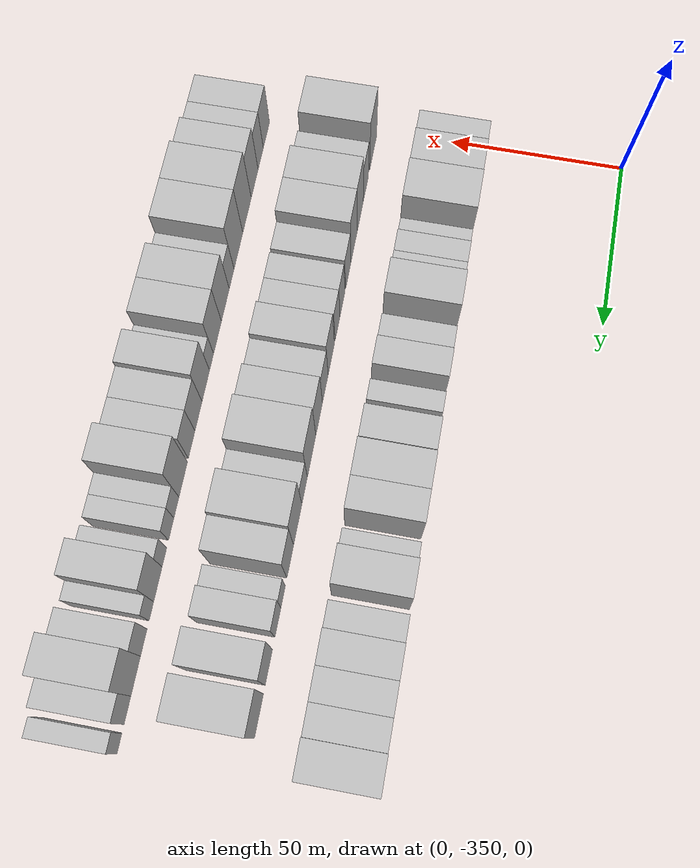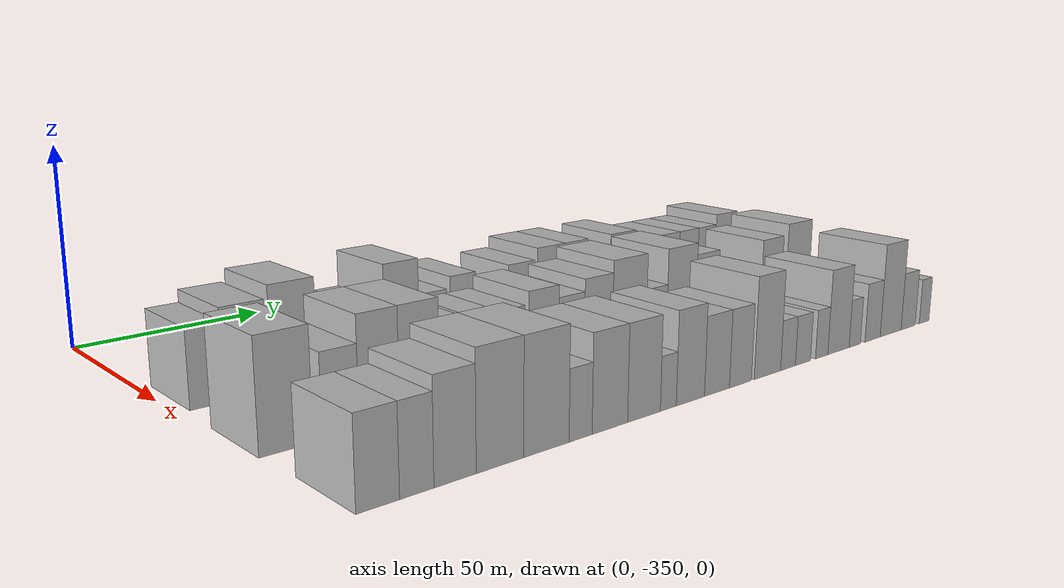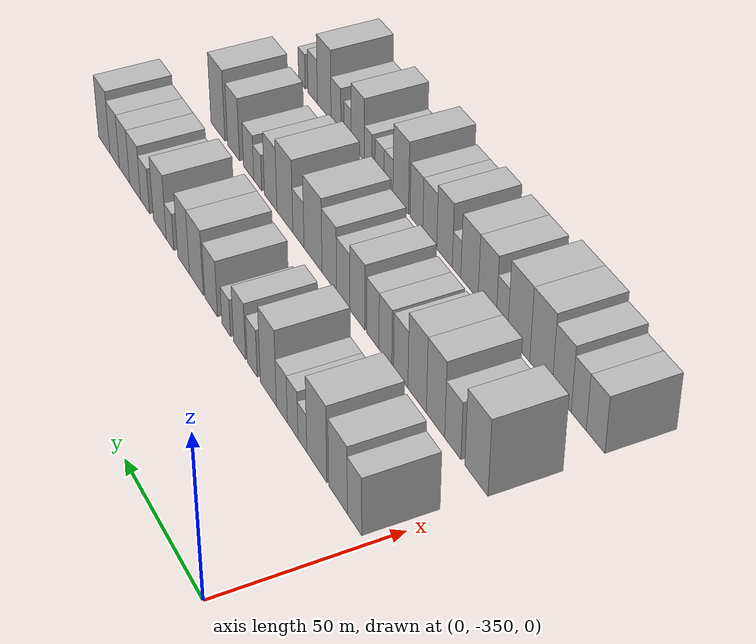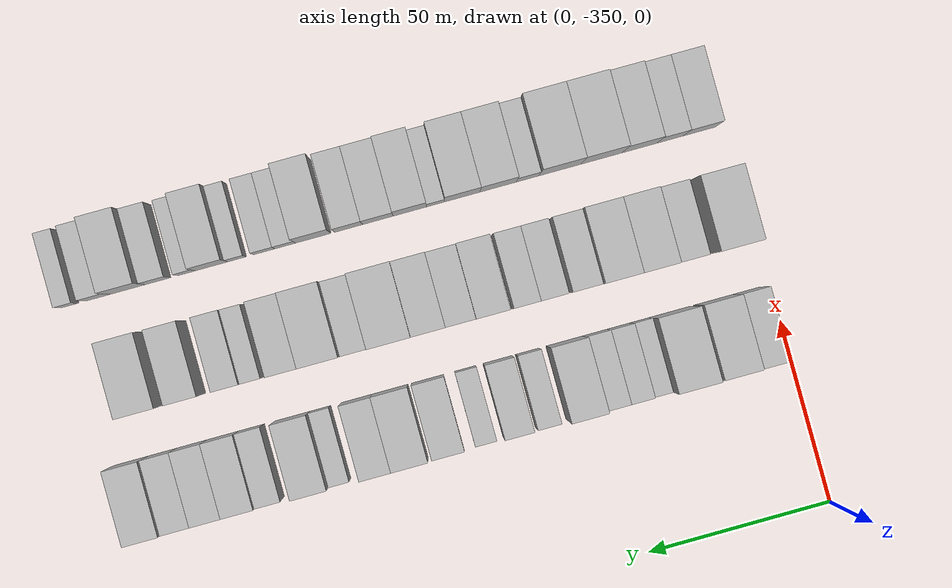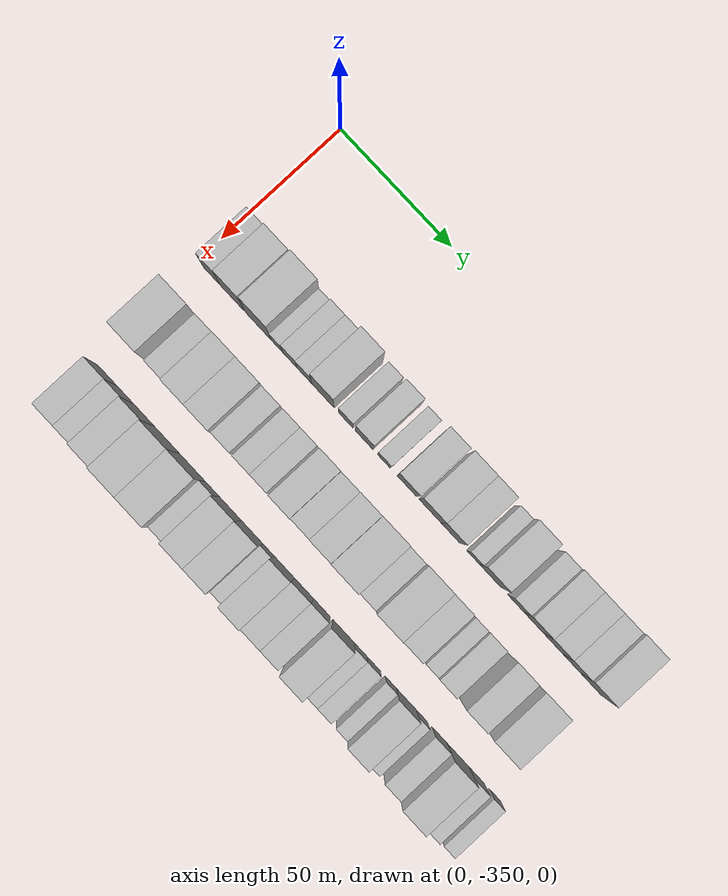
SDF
<sdf version="1.6">
 <world name="default">
  <model name="building_1">
   <static>1</static>
   <pose>50.0000 -343.1323 0 0.000000 0.000000 0.000000</pose>
   <link name="link">
    <pose>0 0 9.00 0 0 0</pose>
    <collision name="collision"><geometry><box><size>20.0000 7.7355 18.0000</size></box></geometry></collision>
    <visual name="visual">
     <cast_shadows>0</cast_shadows>
     <geometry><box><size>20.0000 7.7355 18.0000</size></box></geometry>
     <material>
      <script>
       <uri>model://HANNAS_wall/materials/scripts</uri>
       <uri>model://HANNAS_wall/materials/textures</uri>
       <name>vrc/HANNAS_wall</name>
      </script>
     </material>
    </visual>
   </link>
  </model>
  <model name="building_2">
   <static>1</static>
   <pose>50.0000 -334.0682 0 0.000000 0.000000 0.000000</pose>
   <link name="link">
    <pose>0 0 10.50 0 0 0</pose>
    <collision name="collision"><geometry><box><size>20.0000 10.3926 21.0000</size></box></geometry></collision>
    <visual name="visual">
     <cast_shadows>0</cast_shadows>
     <geometry><box><size>20.0000 10.3926 21.0000</size></box></geometry>
     <material>
      <script>
       <uri>model://HANNAS_wall/materials/scripts</uri>
       <uri>model://HANNAS_wall/materials/textures</uri>
       <name>vrc/HANNAS_wall</name>
      </script>
     </material>
    </visual>
   </link>
  </model>
  <model name="building_3">
   <static>1</static>
   <pose>50.0000 -322.1165 0 0.000000 0.000000 0.000000</pose>
   <link name="link">
    <pose>0 0 12.00 0 0 0</pose>
    <collision name="collision"><geometry><box><size>20.0000 11.5109 24.0000</size></box></geometry></collision>
    <visual name="visual">
     <cast_shadows>0</cast_shadows>
     <geometry><box><size>20.0000 11.5109 24.0000</size></box></geometry>
     <material>
      <script>
       <uri>model://HANNAS_wall/materials/scripts</uri>
       <uri>model://HANNAS_wall/materials/textures</uri>
       <name>vrc/HANNAS_wall</name>
      </script>
     </material>
    </visual>
   </link>
  </model>
  <model name="building_4">
   <static>1</static>
   <pose>50.0000 -313.7867 0 0.000000 0.000000 0.000000</pose>
   <link name="link">
    <pose>0 0 6.00 0 0 0</pose>
    <collision name="collision"><geometry><box><size>20.0000 5.1487 12.0000</size></box></geometry></collision>
    <visual name="visual">
     <cast_shadows>0</cast_shadows>
     <geometry><box><size>20.0000 5.1487 12.0000</size></box></geometry>
     <material>
      <script>
       <uri>model://HANNAS_wall/materials/scripts</uri>
       <uri>model://HANNAS_wall/materials/textures</uri>
       <name>vrc/HANNAS_wall</name>
      </script>
     </material>
    </visual>
   </link>
  </model>
  <model name="building_5">
   <static>1</static>
   <pose>50.0000 -308.0372 0 0.000000 0.000000 0.000000</pose>
   <link name="link">
    <pose>0 0 7.50 0 0 0</pose>
    <collision name="collision"><geometry><box><size>20.0000 6.3502 15.0000</size></box></geometry></collision>
    <visual name="visual">
     <cast_shadows>0</cast_shadows>
     <geometry><box><size>20.0000 6.3502 15.0000</size></box></geometry>
     <material>
      <script>
       <uri>model://HANNAS_wall/materials/scripts</uri>
       <uri>model://HANNAS_wall/materials/textures</uri>
       <name>vrc/HANNAS_wall</name>
      </script>
     </material>
    </visual>
   </link>
  </model>
  <model name="building_6">
   <static>1</static>
   <pose>50.0000 -301.5189 0 0.000000 0.000000 0.000000</pose>
   <link name="link">
    <pose>0 0 7.50 0 0 0</pose>
    <collision name="collision"><geometry><box><size>20.0000 6.6865 15.0000</size></box></geometry></collision>
    <visual name="visual">
     <cast_shadows>0</cast_shadows>
     <geometry><box><size>20.0000 6.6865 15.0000</size></box></geometry>
     <material>
      <script>
       <uri>model://HANNAS_wall/materials/scripts</uri>
       <uri>model://HANNAS_wall/materials/textures</uri>
       <name>vrc/HANNAS_wall</name>
      </script>
     </material>
    </visual>
   </link>
  </model>
  <model name="building_7">
   <static>1</static>
   <pose>50.0000 -293.2003 0 0.000000 0.000000 0.000000</pose>
   <link name="link">
    <pose>0 0 12.00 0 0 0</pose>
    <collision name="collision"><geometry><box><size>20.0000 9.9508 24.0000</size></box></geometry></collision>
    <visual name="visual">
     <cast_shadows>0</cast_shadows>
     <geometry><box><size>20.0000 9.9508 24.0000</size></box></geometry>
     <material>
      <script>
       <uri>model://HANNAS_wall/materials/scripts</uri>
       <uri>model://HANNAS_wall/materials/textures</uri>
       <name>vrc/HANNAS_wall</name>
      </script>
     </material>
    </visual>
   </link>
  </model>
  <model name="building_8">
   <static>1</static>
   <pose>50.0000 -283.0246 0 0.000000 0.000000 0.000000</pose>
   <link name="link">
    <pose>0 0 7.50 0 0 0</pose>
    <collision name="collision"><geometry><box><size>20.0000 6.4006 15.0000</size></box></geometry></collision>
    <visual name="visual">
     <cast_shadows>0</cast_shadows>
     <geometry><box><size>20.0000 6.4006 15.0000</size></box></geometry>
     <material>
      <script>
       <uri>model://HANNAS_wall/materials/scripts</uri>
       <uri>model://HANNAS_wall/materials/textures</uri>
       <name>vrc/HANNAS_wall</name>
      </script>
     </material>
    </visual>
   </link>
  </model>
  <model name="building_9">
   <static>1</static>
   <pose>50.0000 -274.8611 0 0.000000 0.000000 0.000000</pose>
   <link name="link">
    <pose>0 0 9.00 0 0 0</pose>
    <collision name="collision"><geometry><box><size>20.0000 7.9264 18.0000</size></box></geometry></collision>
    <visual name="visual">
     <cast_shadows>0</cast_shadows>
     <geometry><box><size>20.0000 7.9264 18.0000</size></box></geometry>
     <material>
      <script>
       <uri>model://HANNAS_wall/materials/scripts</uri>
       <uri>model://HANNAS_wall/materials/textures</uri>
       <name>vrc/HANNAS_wall</name>
      </script>
     </material>
    </visual>
   </link>
  </model>
  <model name="building_10">
   <static>1</static>
   <pose>50.0000 -266.0002 0 0.000000 0.000000 0.000000</pose>
   <link name="link">
    <pose>0 0 6.00 0 0 0</pose>
    <collision name="collision"><geometry><box><size>20.0000 5.7954 12.0000</size></box></geometry></collision>
    <visual name="visual">
     <cast_shadows>0</cast_shadows>
     <geometry><box><size>20.0000 5.7954 12.0000</size></box></geometry>
     <material>
      <script>
       <uri>model://HANNAS_wall/materials/scripts</uri>
       <uri>model://HANNAS_wall/materials/textures</uri>
       <name>vrc/HANNAS_wall</name>
      </script>
     </material>
    </visual>
   </link>
  </model>
  <model name="building_11">
   <static>1</static>
   <pose>50.0000 -255.7289 0 0.000000 0.000000 0.000000</pose>
   <link name="link">
    <pose>0 0 9.00 0 0 0</pose>
    <collision name="collision"><geometry><box><size>20.0000 8.7473 18.0000</size></box></geometry></collision>
    <visual name="visual">
     <cast_shadows>0</cast_shadows>
     <geometry><box><size>20.0000 8.7473 18.0000</size></box></geometry>
     <material>
      <script>
       <uri>model://HANNAS_wall/materials/scripts</uri>
       <uri>model://HANNAS_wall/materials/textures</uri>
       <name>vrc/HANNAS_wall</name>
      </script>
     </material>
    </visual>
   </link>
  </model>
  <model name="building_12">
   <static>1</static>
   <pose>50.0000 -245.4436 0 0.000000 0.000000 0.000000</pose>
   <link name="link">
    <pose>0 0 10.50 0 0 0</pose>
    <collision name="collision"><geometry><box><size>20.0000 9.8232 21.0000</size></box></geometry></collision>
    <visual name="visual">
     <cast_shadows>0</cast_shadows>
     <geometry><box><size>20.0000 9.8232 21.0000</size></box></geometry>
     <material>
      <script>
       <uri>model://HANNAS_wall/materials/scripts</uri>
       <uri>model://HANNAS_wall/materials/textures</uri>
       <name>vrc/HANNAS_wall</name>
      </script>
     </material>
    </visual>
   </link>
  </model>
  <model name="building_13">
   <static>1</static>
   <pose>50.0000 -236.3201 0 0.000000 0.000000 0.000000</pose>
   <link name="link">
    <pose>0 0 10.50 0 0 0</pose>
    <collision name="collision"><geometry><box><size>20.0000 8.4239 21.0000</size></box></geometry></collision>
    <visual name="visual">
     <cast_shadows>0</cast_shadows>
     <geometry><box><size>20.0000 8.4239 21.0000</size></box></geometry>
     <material>
      <script>
       <uri>model://HANNAS_wall/materials/scripts</uri>
       <uri>model://HANNAS_wall/materials/textures</uri>
       <name>vrc/HANNAS_wall</name>
      </script>
     </material>
    </visual>
   </link>
  </model>
  <model name="building_14">
   <static>1</static>
   <pose>50.0000 -226.3254 0 0.000000 0.000000 0.000000</pose>
   <link name="link">
    <pose>0 0 6.00 0 0 0</pose>
    <collision name="collision"><geometry><box><size>20.0000 5.5656 12.0000</size></box></geometry></collision>
    <visual name="visual">
     <cast_shadows>0</cast_shadows>
     <geometry><box><size>20.0000 5.5656 12.0000</size></box></geometry>
     <material>
      <script>
       <uri>model://HANNAS_wall/materials/scripts</uri>
       <uri>model://HANNAS_wall/materials/textures</uri>
       <name>vrc/HANNAS_wall</name>
      </script>
     </material>
    </visual>
   </link>
  </model>
  <model name="building_15">
   <static>1</static>
   <pose>50.0000 -218.6928 0 0.000000 0.000000 0.000000</pose>
   <link name="link">
    <pose>0 0 10.50 0 0 0</pose>
    <collision name="collision"><geometry><box><size>20.0000 9.6996 21.0000</size></box></geometry></collision>
    <visual name="visual">
     <cast_shadows>0</cast_shadows>
     <geometry><box><size>20.0000 9.6996 21.0000</size></box></geometry>
     <material>
      <script>
       <uri>model://HANNAS_wall/materials/scripts</uri>
       <uri>model://HANNAS_wall/materials/textures</uri>
       <name>vrc/HANNAS_wall</name>
      </script>
     </material>
    </visual>
   </link>
  </model>
  <model name="building_16">
   <static>1</static>
   <pose>50.0000 -207.3635 0 0.000000 0.000000 0.000000</pose>
   <link name="link">
    <pose>0 0 7.50 0 0 0</pose>
    <collision name="collision"><geometry><box><size>20.0000 6.9588 15.0000</size></box></geometry></collision>
    <visual name="visual">
     <cast_shadows>0</cast_shadows>
     <geometry><box><size>20.0000 6.9588 15.0000</size></box></geometry>
     <material>
      <script>
       <uri>model://HANNAS_wall/materials/scripts</uri>
       <uri>model://HANNAS_wall/materials/textures</uri>
       <name>vrc/HANNAS_wall</name>
      </script>
     </material>
    </visual>
   </link>
  </model>
  <model name="building_17">
   <static>1</static>
   <pose>50.0000 -199.5270 0 0.000000 0.000000 0.000000</pose>
   <link name="link">
    <pose>0 0 9.00 0 0 0</pose>
    <collision name="collision"><geometry><box><size>20.0000 8.7142 18.0000</size></box></geometry></collision>
    <visual name="visual">
     <cast_shadows>0</cast_shadows>
     <geometry><box><size>20.0000 8.7142 18.0000</size></box></geometry>
     <material>
      <script>
       <uri>model://HANNAS_wall/materials/scripts</uri>
       <uri>model://HANNAS_wall/materials/textures</uri>
       <name>vrc/HANNAS_wall</name>
      </script>
     </material>
    </visual>
   </link>
  </model>
  <model name="building_18">
   <static>1</static>
   <pose>50.0000 -191.0244 0 0.000000 0.000000 0.000000</pose>
   <link name="link">
    <pose>0 0 9.00 0 0 0</pose>
    <collision name="collision"><geometry><box><size>20.0000 8.2911 18.0000</size></box></geometry></collision>
    <visual name="visual">
     <cast_shadows>0</cast_shadows>
     <geometry><box><size>20.0000 8.2911 18.0000</size></box></geometry>
     <material>
      <script>
       <uri>model://HANNAS_wall/materials/scripts</uri>
       <uri>model://HANNAS_wall/materials/textures</uri>
       <name>vrc/HANNAS_wall</name>
      </script>
     </material>
    </visual>
   </link>
  </model>
  <model name="building_19">
   <static>1</static>
   <pose>50.0000 -182.9614 0 0.000000 0.000000 0.000000</pose>
   <link name="link">
    <pose>0 0 9.00 0 0 0</pose>
    <collision name="collision"><geometry><box><size>20.0000 7.8348 18.0000</size></box></geometry></collision>
    <visual name="visual">
     <cast_shadows>0</cast_shadows>
     <geometry><box><size>20.0000 7.8348 18.0000</size></box></geometry>
     <material>
      <script>
       <uri>model://HANNAS_wall/materials/scripts</uri>
       <uri>model://HANNAS_wall/materials/textures</uri>
       <name>vrc/HANNAS_wall</name>
      </script>
     </material>
    </visual>
   </link>
  </model>
  <model name="building_20">
   <static>1</static>
   <pose>50.0000 -174.2589 0 0.000000 0.000000 0.000000</pose>
   <link name="link">
    <pose>0 0 10.50 0 0 0</pose>
    <collision name="collision"><geometry><box><size>20.0000 9.5702 21.0000</size></box></geometry></collision>
    <visual name="visual">
     <cast_shadows>0</cast_shadows>
     <geometry><box><size>20.0000 9.5702 21.0000</size></box></geometry>
     <material>
      <script>
       <uri>model://HANNAS_wall/materials/scripts</uri>
       <uri>model://HANNAS_wall/materials/textures</uri>
       <name>vrc/HANNAS_wall</name>
      </script>
     </material>
    </visual>
   </link>
  </model>
  <model name="building_82">
   <static>1</static>
   <pose>82.0000 -342.1577 0 0.000000 0.000000 0.000000</pose>
   <link name="link">
    <pose>0 0 12.00 0 0 0</pose>
    <collision name="collision"><geometry><box><size>20.0000 11.6846 24.0000</size></box></geometry></collision>
    <visual name="visual">
     <cast_shadows>0</cast_shadows>
     <geometry><box><size>20.0000 11.6846 24.0000</size></box></geometry>
     <material>
      <script>
       <uri>model://HANNAS_wall/materials/scripts</uri>
       <uri>model://HANNAS_wall/materials/textures</uri>
       <name>vrc/HANNAS_wall</name>
      </script>
     </material>
    </visual>
   </link>
  </model>
  <model name="building_83">
   <static>1</static>
   <pose>82.0000 -330.0764 0 0.000000 0.000000 0.000000</pose>
   <link name="link">
    <pose>0 0 9.00 0 0 0</pose>
    <collision name="collision"><geometry><box><size>20.0000 8.4780 18.0000</size></box></geometry></collision>
    <visual name="visual">
     <cast_shadows>0</cast_shadows>
     <geometry><box><size>20.0000 8.4780 18.0000</size></box></geometry>
     <material>
      <script>
       <uri>model://HANNAS_wall/materials/scripts</uri>
       <uri>model://HANNAS_wall/materials/textures</uri>
       <name>vrc/HANNAS_wall</name>
      </script>
     </material>
    </visual>
   </link>
  </model>
  <model name="building_84">
   <static>1</static>
   <pose>82.0000 -320.9536 0 0.000000 0.000000 0.000000</pose>
   <link name="link">
    <pose>0 0 12.00 0 0 0</pose>
    <collision name="collision"><geometry><box><size>20.0000 9.7677 24.0000</size></box></geometry></collision>
    <visual name="visual">
     <cast_shadows>0</cast_shadows>
     <geometry><box><size>20.0000 9.7677 24.0000</size></box></geometry>
     <material>
      <script>
       <uri>model://HANNAS_wall/materials/scripts</uri>
       <uri>model://HANNAS_wall/materials/textures</uri>
       <name>vrc/HANNAS_wall</name>
      </script>
     </material>
    </visual>
   </link>
  </model>
  <model name="building_85">
   <static>1</static>
   <pose>82.0000 -310.9833 0 0.000000 0.000000 0.000000</pose>
   <link name="link">
    <pose>0 0 12.00 0 0 0</pose>
    <collision name="collision"><geometry><box><size>20.0000 10.1730 24.0000</size></box></geometry></collision>
    <visual name="visual">
     <cast_shadows>0</cast_shadows>
     <geometry><box><size>20.0000 10.1730 24.0000</size></box></geometry>
     <material>
      <script>
       <uri>model://HANNAS_wall/materials/scripts</uri>
       <uri>model://HANNAS_wall/materials/textures</uri>
       <name>vrc/HANNAS_wall</name>
      </script>
     </material>
    </visual>
   </link>
  </model>
  <model name="building_86">
   <static>1</static>
   <pose>82.0000 -301.8512 0 0.000000 0.000000 0.000000</pose>
   <link name="link">
    <pose>0 0 9.00 0 0 0</pose>
    <collision name="collision"><geometry><box><size>20.0000 8.0912 18.0000</size></box></geometry></collision>
    <visual name="visual">
     <cast_shadows>0</cast_shadows>
     <geometry><box><size>20.0000 8.0912 18.0000</size></box></geometry>
     <material>
      <script>
       <uri>model://HANNAS_wall/materials/scripts</uri>
       <uri>model://HANNAS_wall/materials/textures</uri>
       <name>vrc/HANNAS_wall</name>
      </script>
     </material>
    </visual>
   </link>
  </model>
  <model name="building_87">
   <static>1</static>
   <pose>82.0000 -293.0760 0 0.000000 0.000000 0.000000</pose>
   <link name="link">
    <pose>0 0 9.00 0 0 0</pose>
    <collision name="collision"><geometry><box><size>20.0000 7.4592 18.0000</size></box></geometry></collision>
    <visual name="visual">
     <cast_shadows>0</cast_shadows>
     <geometry><box><size>20.0000 7.4592 18.0000</size></box></geometry>
     <material>
      <script>
       <uri>model://HANNAS_wall/materials/scripts</uri>
       <uri>model://HANNAS_wall/materials/textures</uri>
       <name>vrc/HANNAS_wall</name>
      </script>
     </material>
    </visual>
   </link>
  </model>
  <model name="building_88">
   <static>1</static>
   <pose>82.0000 -285.7234 0 0.000000 0.000000 0.000000</pose>
   <link name="link">
    <pose>0 0 9.00 0 0 0</pose>
    <collision name="collision"><geometry><box><size>20.0000 7.2460 18.0000</size></box></geometry></collision>
    <visual name="visual">
     <cast_shadows>0</cast_shadows>
     <geometry><box><size>20.0000 7.2460 18.0000</size></box></geometry>
     <material>
      <script>
       <uri>model://HANNAS_wall/materials/scripts</uri>
       <uri>model://HANNAS_wall/materials/textures</uri>
       <name>vrc/HANNAS_wall</name>
      </script>
     </material>
    </visual>
   </link>
  </model>
  <model name="building_89">
   <static>1</static>
   <pose>82.0000 -276.5617 0 0.000000 0.000000 0.000000</pose>
   <link name="link">
    <pose>0 0 10.50 0 0 0</pose>
    <collision name="collision"><geometry><box><size>20.0000 9.0774 21.0000</size></box></geometry></collision>
    <visual name="visual">
     <cast_shadows>0</cast_shadows>
     <geometry><box><size>20.0000 9.0774 21.0000</size></box></geometry>
     <material>
      <script>
       <uri>model://HANNAS_wall/materials/scripts</uri>
       <uri>model://HANNAS_wall/materials/textures</uri>
       <name>vrc/HANNAS_wall</name>
      </script>
     </material>
    </visual>
   </link>
  </model>
  <model name="building_90">
   <static>1</static>
   <pose>82.0000 -267.9298 0 0.000000 0.000000 0.000000</pose>
   <link name="link">
    <pose>0 0 9.00 0 0 0</pose>
    <collision name="collision"><geometry><box><size>20.0000 8.1864 18.0000</size></box></geometry></collision>
    <visual name="visual">
     <cast_shadows>0</cast_shadows>
     <geometry><box><size>20.0000 8.1864 18.0000</size></box></geometry>
     <material>
      <script>
       <uri>model://HANNAS_wall/materials/scripts</uri>
       <uri>model://HANNAS_wall/materials/textures</uri>
       <name>vrc/HANNAS_wall</name>
      </script>
     </material>
    </visual>
   </link>
  </model>
  <model name="building_91">
   <static>1</static>
   <pose>82.0000 -259.2236 0 0.000000 0.000000 0.000000</pose>
   <link name="link">
    <pose>0 0 10.50 0 0 0</pose>
    <collision name="collision"><geometry><box><size>20.0000 9.2261 21.0000</size></box></geometry></collision>
    <visual name="visual">
     <cast_shadows>0</cast_shadows>
     <geometry><box><size>20.0000 9.2261 21.0000</size></box></geometry>
     <material>
      <script>
       <uri>model://HANNAS_wall/materials/scripts</uri>
       <uri>model://HANNAS_wall/materials/textures</uri>
       <name>vrc/HANNAS_wall</name>
      </script>
     </material>
    </visual>
   </link>
  </model>
  <model name="building_92">
   <static>1</static>
   <pose>82.0000 -248.7819 0 0.000000 0.000000 0.000000</pose>
   <link name="link">
    <pose>0 0 12.00 0 0 0</pose>
    <collision name="collision"><geometry><box><size>20.0000 11.6572 24.0000</size></box></geometry></collision>
    <visual name="visual">
     <cast_shadows>0</cast_shadows>
     <geometry><box><size>20.0000 11.6572 24.0000</size></box></geometry>
     <material>
      <script>
       <uri>model://HANNAS_wall/materials/scripts</uri>
       <uri>model://HANNAS_wall/materials/textures</uri>
       <name>vrc/HANNAS_wall</name>
      </script>
     </material>
    </visual>
   </link>
  </model>
  <model name="building_93">
   <static>1</static>
   <pose>82.0000 -239.2567 0 0.000000 0.000000 0.000000</pose>
   <link name="link">
    <pose>0 0 7.50 0 0 0</pose>
    <collision name="collision"><geometry><box><size>20.0000 7.3933 15.0000</size></box></geometry></collision>
    <visual name="visual">
     <cast_shadows>0</cast_shadows>
     <geometry><box><size>20.0000 7.3933 15.0000</size></box></geometry>
     <material>
      <script>
       <uri>model://HANNAS_wall/materials/scripts</uri>
       <uri>model://HANNAS_wall/materials/textures</uri>
       <name>vrc/HANNAS_wall</name>
      </script>
     </material>
    </visual>
   </link>
  </model>
  <model name="building_94">
   <static>1</static>
   <pose>82.0000 -230.1177 0 0.000000 0.000000 0.000000</pose>
   <link name="link">
    <pose>0 0 12.00 0 0 0</pose>
    <collision name="collision"><geometry><box><size>20.0000 10.8847 24.0000</size></box></geometry></collision>
    <visual name="visual">
     <cast_shadows>0</cast_shadows>
     <geometry><box><size>20.0000 10.8847 24.0000</size></box></geometry>
     <material>
      <script>
       <uri>model://HANNAS_wall/materials/scripts</uri>
       <uri>model://HANNAS_wall/materials/textures</uri>
       <name>vrc/HANNAS_wall</name>
      </script>
     </material>
    </visual>
   </link>
  </model>
  <model name="building_95">
   <static>1</static>
   <pose>82.0000 -220.3671 0 0.000000 0.000000 0.000000</pose>
   <link name="link">
    <pose>0 0 10.50 0 0 0</pose>
    <collision name="collision"><geometry><box><size>20.0000 8.6164 21.0000</size></box></geometry></collision>
    <visual name="visual">
     <cast_shadows>0</cast_shadows>
     <geometry><box><size>20.0000 8.6164 21.0000</size></box></geometry>
     <material>
      <script>
       <uri>model://HANNAS_wall/materials/scripts</uri>
       <uri>model://HANNAS_wall/materials/textures</uri>
       <name>vrc/HANNAS_wall</name>
      </script>
     </material>
    </visual>
   </link>
  </model>
  <model name="building_96">
   <static>1</static>
   <pose>82.0000 -211.2532 0 0.000000 0.000000 0.000000</pose>
   <link name="link">
    <pose>0 0 6.00 0 0 0</pose>
    <collision name="collision"><geometry><box><size>20.0000 5.6115 12.0000</size></box></geometry></collision>
    <visual name="visual">
     <cast_shadows>0</cast_shadows>
     <geometry><box><size>20.0000 5.6115 12.0000</size></box></geometry>
     <material>
      <script>
       <uri>model://HANNAS_wall/materials/scripts</uri>
       <uri>model://HANNAS_wall/materials/textures</uri>
       <name>vrc/HANNAS_wall</name>
      </script>
     </material>
    </visual>
   </link>
  </model>
  <model name="building_97">
   <static>1</static>
   <pose>82.0000 -204.7454 0 0.000000 0.000000 0.000000</pose>
   <link name="link">
    <pose>0 0 7.50 0 0 0</pose>
    <collision name="collision"><geometry><box><size>20.0000 7.4041 15.0000</size></box></geometry></collision>
    <visual name="visual">
     <cast_shadows>0</cast_shadows>
     <geometry><box><size>20.0000 7.4041 15.0000</size></box></geometry>
     <material>
      <script>
       <uri>model://HANNAS_wall/materials/scripts</uri>
       <uri>model://HANNAS_wall/materials/textures</uri>
       <name>vrc/HANNAS_wall</name>
      </script>
     </material>
    </visual>
   </link>
  </model>
  <model name="building_98">
   <static>1</static>
   <pose>82.0000 -193.6191 0 0.000000 0.000000 0.000000</pose>
   <link name="link">
    <pose>0 0 10.50 0 0 0</pose>
    <collision name="collision"><geometry><box><size>20.0000 8.8485 21.0000</size></box></geometry></collision>
    <visual name="visual">
     <cast_shadows>0</cast_shadows>
     <geometry><box><size>20.0000 8.8485 21.0000</size></box></geometry>
     <material>
      <script>
       <uri>model://HANNAS_wall/materials/scripts</uri>
       <uri>model://HANNAS_wall/materials/textures</uri>
       <name>vrc/HANNAS_wall</name>
      </script>
     </material>
    </visual>
   </link>
  </model>
  <model name="building_99">
   <static>1</static>
   <pose>82.0000 -181.8639 0 0.000000 0.000000 0.000000</pose>
   <link name="link">
    <pose>0 0 12.00 0 0 0</pose>
    <collision name="collision"><geometry><box><size>20.0000 10.6620 24.0000</size></box></geometry></collision>
    <visual name="visual">
     <cast_shadows>0</cast_shadows>
     <geometry><box><size>20.0000 10.6620 24.0000</size></box></geometry>
     <material>
      <script>
       <uri>model://HANNAS_wall/materials/scripts</uri>
       <uri>model://HANNAS_wall/materials/textures</uri>
       <name>vrc/HANNAS_wall</name>
      </script>
     </material>
    </visual>
   </link>
  </model>
  <model name="building_160">
   <static>1</static>
   <pose>114.0000 -342.5778 0 0.000000 0.000000 0.000000</pose>
   <link name="link">
    <pose>0 0 9.00 0 0 0</pose>
    <collision name="collision"><geometry><box><size>20.0000 8.8443 18.0000</size></box></geometry></collision>
    <visual name="visual">
     <cast_shadows>0</cast_shadows>
     <geometry><box><size>20.0000 8.8443 18.0000</size></box></geometry>
     <material>
      <script>
       <uri>model://HANNAS_wall/materials/scripts</uri>
       <uri>model://HANNAS_wall/materials/textures</uri>
       <name>vrc/HANNAS_wall</name>
      </script>
     </material>
    </visual>
   </link>
  </model>
  <model name="building_161">
   <static>1</static>
   <pose>114.0000 -334.4959 0 0.000000 0.000000 0.000000</pose>
   <link name="link">
    <pose>0 0 9.00 0 0 0</pose>
    <collision name="collision"><geometry><box><size>20.0000 7.3195 18.0000</size></box></geometry></collision>
    <visual name="visual">
     <cast_shadows>0</cast_shadows>
     <geometry><box><size>20.0000 7.3195 18.0000</size></box></geometry>
     <material>
      <script>
       <uri>model://HANNAS_wall/materials/scripts</uri>
       <uri>model://HANNAS_wall/materials/textures</uri>
       <name>vrc/HANNAS_wall</name>
      </script>
     </material>
    </visual>
   </link>
  </model>
  <model name="building_162">
   <static>1</static>
   <pose>114.0000 -326.1073 0 0.000000 0.000000 0.000000</pose>
   <link name="link">
    <pose>0 0 10.50 0 0 0</pose>
    <collision name="collision"><geometry><box><size>20.0000 9.4577 21.0000</size></box></geometry></collision>
    <visual name="visual">
     <cast_shadows>0</cast_shadows>
     <geometry><box><size>20.0000 9.4577 21.0000</size></box></geometry>
     <material>
      <script>
       <uri>model://HANNAS_wall/materials/scripts</uri>
       <uri>model://HANNAS_wall/materials/textures</uri>
       <name>vrc/HANNAS_wall</name>
      </script>
     </material>
    </visual>
   </link>
  </model>
  <model name="building_163">
   <static>1</static>
   <pose>114.0000 -315.6793 0 0.000000 0.000000 0.000000</pose>
   <link name="link">
    <pose>0 0 12.00 0 0 0</pose>
    <collision name="collision"><geometry><box><size>20.0000 11.3982 24.0000</size></box></geometry></collision>
    <visual name="visual">
     <cast_shadows>0</cast_shadows>
     <geometry><box><size>20.0000 11.3982 24.0000</size></box></geometry>
     <material>
      <script>
       <uri>model://HANNAS_wall/materials/scripts</uri>
       <uri>model://HANNAS_wall/materials/textures</uri>
       <name>vrc/HANNAS_wall</name>
      </script>
     </material>
    </visual>
   </link>
  </model>
  <model name="building_164">
   <static>1</static>
   <pose>114.0000 -304.1939 0 0.000000 0.000000 0.000000</pose>
   <link name="link">
    <pose>0 0 12.00 0 0 0</pose>
    <collision name="collision"><geometry><box><size>20.0000 11.5726 24.0000</size></box></geometry></collision>
    <visual name="visual">
     <cast_shadows>0</cast_shadows>
     <geometry><box><size>20.0000 11.5726 24.0000</size></box></geometry>
     <material>
      <script>
       <uri>model://HANNAS_wall/materials/scripts</uri>
       <uri>model://HANNAS_wall/materials/textures</uri>
       <name>vrc/HANNAS_wall</name>
      </script>
     </material>
    </visual>
   </link>
  </model>
  <model name="building_165">
   <static>1</static>
   <pose>114.0000 -295.3049 0 0.000000 0.000000 0.000000</pose>
   <link name="link">
    <pose>0 0 7.50 0 0 0</pose>
    <collision name="collision"><geometry><box><size>20.0000 6.2055 15.0000</size></box></geometry></collision>
    <visual name="visual">
     <cast_shadows>0</cast_shadows>
     <geometry><box><size>20.0000 6.2055 15.0000</size></box></geometry>
     <material>
      <script>
       <uri>model://HANNAS_wall/materials/scripts</uri>
       <uri>model://HANNAS_wall/materials/textures</uri>
       <name>vrc/HANNAS_wall</name>
      </script>
     </material>
    </visual>
   </link>
  </model>
  <model name="building_166">
   <static>1</static>
   <pose>114.0000 -287.2203 0 0.000000 0.000000 0.000000</pose>
   <link name="link">
    <pose>0 0 10.50 0 0 0</pose>
    <collision name="collision"><geometry><box><size>20.0000 9.9636 21.0000</size></box></geometry></collision>
    <visual name="visual">
     <cast_shadows>0</cast_shadows>
     <geometry><box><size>20.0000 9.9636 21.0000</size></box></geometry>
     <material>
      <script>
       <uri>model://HANNAS_wall/materials/scripts</uri>
       <uri>model://HANNAS_wall/materials/textures</uri>
       <name>vrc/HANNAS_wall</name>
      </script>
     </material>
    </visual>
   </link>
  </model>
  <model name="building_167">
   <static>1</static>
   <pose>114.0000 -277.3602 0 0.000000 0.000000 0.000000</pose>
   <link name="link">
    <pose>0 0 10.50 0 0 0</pose>
    <collision name="collision"><geometry><box><size>20.0000 9.7568 21.0000</size></box></geometry></collision>
    <visual name="visual">
     <cast_shadows>0</cast_shadows>
     <geometry><box><size>20.0000 9.7568 21.0000</size></box></geometry>
     <material>
      <script>
       <uri>model://HANNAS_wall/materials/scripts</uri>
       <uri>model://HANNAS_wall/materials/textures</uri>
       <name>vrc/HANNAS_wall</name>
      </script>
     </material>
    </visual>
   </link>
  </model>
  <model name="building_168">
   <static>1</static>
   <pose>114.0000 -270.0144 0 0.000000 0.000000 0.000000</pose>
   <link name="link">
    <pose>0 0 6.00 0 0 0</pose>
    <collision name="collision"><geometry><box><size>20.0000 4.9347 12.0000</size></box></geometry></collision>
    <visual name="visual">
     <cast_shadows>0</cast_shadows>
     <geometry><box><size>20.0000 4.9347 12.0000</size></box></geometry>
     <material>
      <script>
       <uri>model://HANNAS_wall/materials/scripts</uri>
       <uri>model://HANNAS_wall/materials/textures</uri>
       <name>vrc/HANNAS_wall</name>
      </script>
     </material>
    </visual>
   </link>
  </model>
  <model name="building_169">
   <static>1</static>
   <pose>114.0000 -263.0095 0 0.000000 0.000000 0.000000</pose>
   <link name="link">
    <pose>0 0 10.50 0 0 0</pose>
    <collision name="collision"><geometry><box><size>20.0000 9.0751 21.0000</size></box></geometry></collision>
    <visual name="visual">
     <cast_shadows>0</cast_shadows>
     <geometry><box><size>20.0000 9.0751 21.0000</size></box></geometry>
     <material>
      <script>
       <uri>model://HANNAS_wall/materials/scripts</uri>
       <uri>model://HANNAS_wall/materials/textures</uri>
       <name>vrc/HANNAS_wall</name>
      </script>
     </material>
    </visual>
   </link>
  </model>
  <model name="building_170">
   <static>1</static>
   <pose>114.0000 -254.2694 0 0.000000 0.000000 0.000000</pose>
   <link name="link">
    <pose>0 0 9.00 0 0 0</pose>
    <collision name="collision"><geometry><box><size>20.0000 8.4051 18.0000</size></box></geometry></collision>
    <visual name="visual">
     <cast_shadows>0</cast_shadows>
     <geometry><box><size>20.0000 8.4051 18.0000</size></box></geometry>
     <material>
      <script>
       <uri>model://HANNAS_wall/materials/scripts</uri>
       <uri>model://HANNAS_wall/materials/textures</uri>
       <name>vrc/HANNAS_wall</name>
      </script>
     </material>
    </visual>
   </link>
  </model>
  <model name="building_171">
   <static>1</static>
   <pose>114.0000 -246.2184 0 0.000000 0.000000 0.000000</pose>
   <link name="link">
    <pose>0 0 9.00 0 0 0</pose>
    <collision name="collision"><geometry><box><size>20.0000 7.6970 18.0000</size></box></geometry></collision>
    <visual name="visual">
     <cast_shadows>0</cast_shadows>
     <geometry><box><size>20.0000 7.6970 18.0000</size></box></geometry>
     <material>
      <script>
       <uri>model://HANNAS_wall/materials/scripts</uri>
       <uri>model://HANNAS_wall/materials/textures</uri>
       <name>vrc/HANNAS_wall</name>
      </script>
     </material>
    </visual>
   </link>
  </model>
  <model name="building_172">
   <static>1</static>
   <pose>114.0000 -236.5291 0 0.000000 0.000000 0.000000</pose>
   <link name="link">
    <pose>0 0 12.00 0 0 0</pose>
    <collision name="collision"><geometry><box><size>20.0000 9.6815 24.0000</size></box></geometry></collision>
    <visual name="visual">
     <cast_shadows>0</cast_shadows>
     <geometry><box><size>20.0000 9.6815 24.0000</size></box></geometry>
     <material>
      <script>
       <uri>model://HANNAS_wall/materials/scripts</uri>
       <uri>model://HANNAS_wall/materials/textures</uri>
       <name>vrc/HANNAS_wall</name>
      </script>
     </material>
    </visual>
   </link>
  </model>
  <model name="building_173">
   <static>1</static>
   <pose>114.0000 -228.8619 0 0.000000 0.000000 0.000000</pose>
   <link name="link">
    <pose>0 0 6.00 0 0 0</pose>
    <collision name="collision"><geometry><box><size>20.0000 5.6530 12.0000</size></box></geometry></collision>
    <visual name="visual">
     <cast_shadows>0</cast_shadows>
     <geometry><box><size>20.0000 5.6530 12.0000</size></box></geometry>
     <material>
      <script>
       <uri>model://HANNAS_wall/materials/scripts</uri>
       <uri>model://HANNAS_wall/materials/textures</uri>
       <name>vrc/HANNAS_wall</name>
      </script>
     </material>
    </visual>
   </link>
  </model>
  <model name="building_174">
   <static>1</static>
   <pose>114.0000 -223.0792 0 0.000000 0.000000 0.000000</pose>
   <link name="link">
    <pose>0 0 6.00 0 0 0</pose>
    <collision name="collision"><geometry><box><size>20.0000 5.9122 12.0000</size></box></geometry></collision>
    <visual name="visual">
     <cast_shadows>0</cast_shadows>
     <geometry><box><size>20.0000 5.9122 12.0000</size></box></geometry>
     <material>
      <script>
       <uri>model://HANNAS_wall/materials/scripts</uri>
       <uri>model://HANNAS_wall/materials/textures</uri>
       <name>vrc/HANNAS_wall</name>
      </script>
     </material>
    </visual>
   </link>
  </model>
  <model name="building_175">
   <static>1</static>
   <pose>114.0000 -215.6318 0 0.000000 0.000000 0.000000</pose>
   <link name="link">
    <pose>0 0 6.00 0 0 0</pose>
    <collision name="collision"><geometry><box><size>20.0000 4.9826 12.0000</size></box></geometry></collision>
    <visual name="visual">
     <cast_shadows>0</cast_shadows>
     <geometry><box><size>20.0000 4.9826 12.0000</size></box></geometry>
     <material>
      <script>
       <uri>model://HANNAS_wall/materials/scripts</uri>
       <uri>model://HANNAS_wall/materials/textures</uri>
       <name>vrc/HANNAS_wall</name>
      </script>
     </material>
    </visual>
   </link>
  </model>
  <model name="building_176">
   <static>1</static>
   <pose>114.0000 -208.6615 0 0.000000 0.000000 0.000000</pose>
   <link name="link">
    <pose>0 0 10.50 0 0 0</pose>
    <collision name="collision"><geometry><box><size>20.0000 8.9580 21.0000</size></box></geometry></collision>
    <visual name="visual">
     <cast_shadows>0</cast_shadows>
     <geometry><box><size>20.0000 8.9580 21.0000</size></box></geometry>
     <material>
      <script>
       <uri>model://HANNAS_wall/materials/scripts</uri>
       <uri>model://HANNAS_wall/materials/textures</uri>
       <name>vrc/HANNAS_wall</name>
      </script>
     </material>
    </visual>
   </link>
  </model>
  <model name="building_177">
   <static>1</static>
   <pose>114.0000 -201.7538 0 0.000000 0.000000 0.000000</pose>
   <link name="link">
    <pose>0 0 6.00 0 0 0</pose>
    <collision name="collision"><geometry><box><size>20.0000 4.8574 12.0000</size></box></geometry></collision>
    <visual name="visual">
     <cast_shadows>0</cast_shadows>
     <geometry><box><size>20.0000 4.8574 12.0000</size></box></geometry>
     <material>
      <script>
       <uri>model://HANNAS_wall/materials/scripts</uri>
       <uri>model://HANNAS_wall/materials/textures</uri>
       <name>vrc/HANNAS_wall</name>
      </script>
     </material>
    </visual>
   </link>
  </model>
  <model name="building_178">
   <static>1</static>
   <pose>114.0000 -193.9143 0 0.000000 0.000000 0.000000</pose>
   <link name="link">
    <pose>0 0 7.50 0 0 0</pose>
    <collision name="collision"><geometry><box><size>20.0000 6.8215 15.0000</size></box></geometry></collision>
    <visual name="visual">
     <cast_shadows>0</cast_shadows>
     <geometry><box><size>20.0000 6.8215 15.0000</size></box></geometry>
     <material>
      <script>
       <uri>model://HANNAS_wall/materials/scripts</uri>
       <uri>model://HANNAS_wall/materials/textures</uri>
       <name>vrc/HANNAS_wall</name>
      </script>
     </material>
    </visual>
   </link>
  </model>
  <model name="building_179">
   <static>1</static>
   <pose>114.0000 -185.6430 0 0.000000 0.000000 0.000000</pose>
   <link name="link">
    <pose>0 0 12.00 0 0 0</pose>
    <collision name="collision"><geometry><box><size>20.0000 9.7211 24.0000</size></box></geometry></collision>
    <visual name="visual">
     <cast_shadows>0</cast_shadows>
     <geometry><box><size>20.0000 9.7211 24.0000</size></box></geometry>
     <material>
      <script>
       <uri>model://HANNAS_wall/materials/scripts</uri>
       <uri>model://HANNAS_wall/materials/textures</uri>
       <name>vrc/HANNAS_wall</name>
      </script>
     </material>
    </visual>
   </link>
  </model>
  <model name="building_180">
   <static>1</static>
   <pose>114.0000 -177.3913 0 0.000000 0.000000 0.000000</pose>
   <link name="link">
    <pose>0 0 7.50 0 0 0</pose>
    <collision name="collision"><geometry><box><size>20.0000 6.7824 15.0000</size></box></geometry></collision>
    <visual name="visual">
     <cast_shadows>0</cast_shadows>
     <geometry><box><size>20.0000 6.7824 15.0000</size></box></geometry>
     <material>
      <script>
       <uri>model://HANNAS_wall/materials/scripts</uri>
       <uri>model://HANNAS_wall/materials/textures</uri>
       <name>vrc/HANNAS_wall</name>
      </script>
     </material>
    </visual>
   </link>
  </model>
  <model name="building_181">
   <static>1</static>
   <pose>114.0000 -169.5766 0 0.000000 0.000000 0.000000</pose>
   <link name="link">
    <pose>0 0 6.00 0 0 0</pose>
    <collision name="collision"><geometry><box><size>20.0000 4.8469 12.0000</size></box></geometry></collision>
    <visual name="visual">
     <cast_shadows>0</cast_shadows>
     <geometry><box><size>20.0000 4.8469 12.0000</size></box></geometry>
     <material>
      <script>
       <uri>model://HANNAS_wall/materials/scripts</uri>
       <uri>model://HANNAS_wall/materials/textures</uri>
       <name>vrc/HANNAS_wall</name>
      </script>
     </material>
    </visual>
   </link>
  </model>
 </world>
</sdf>
